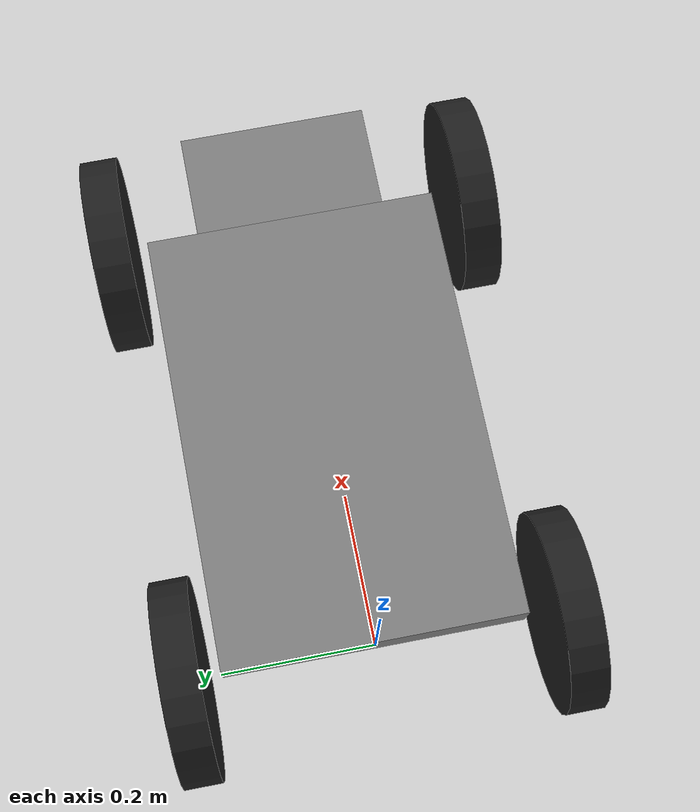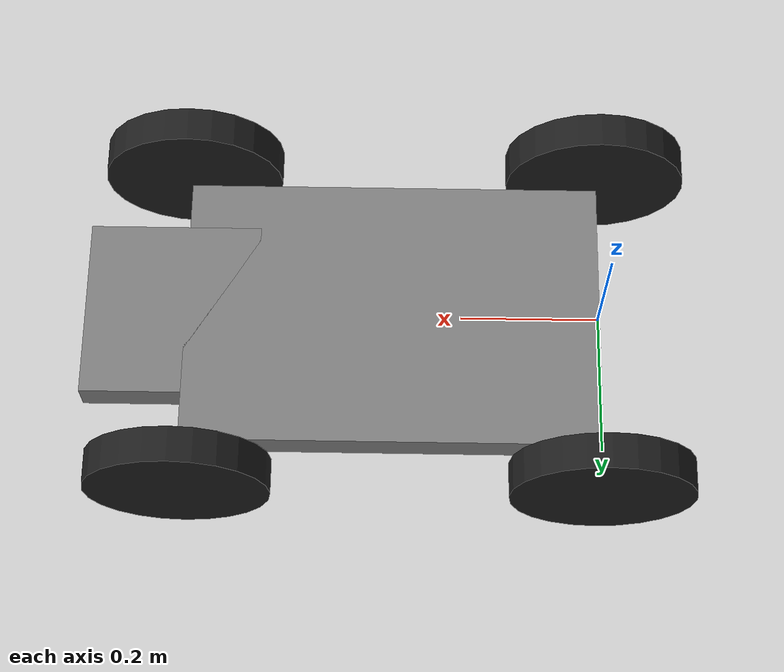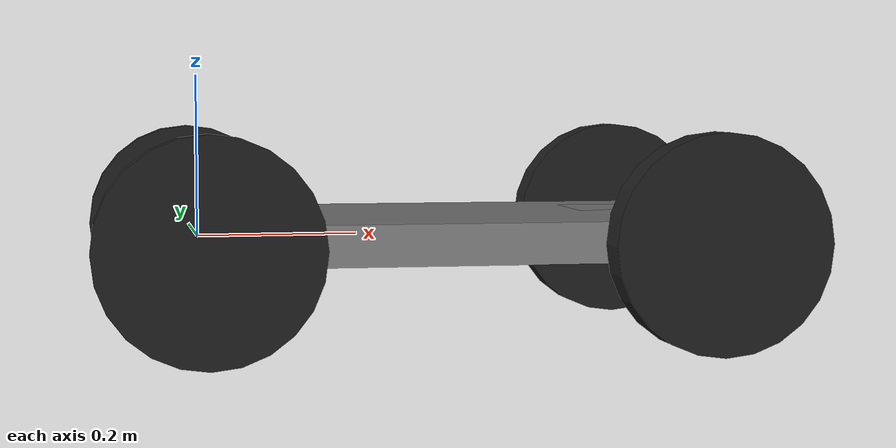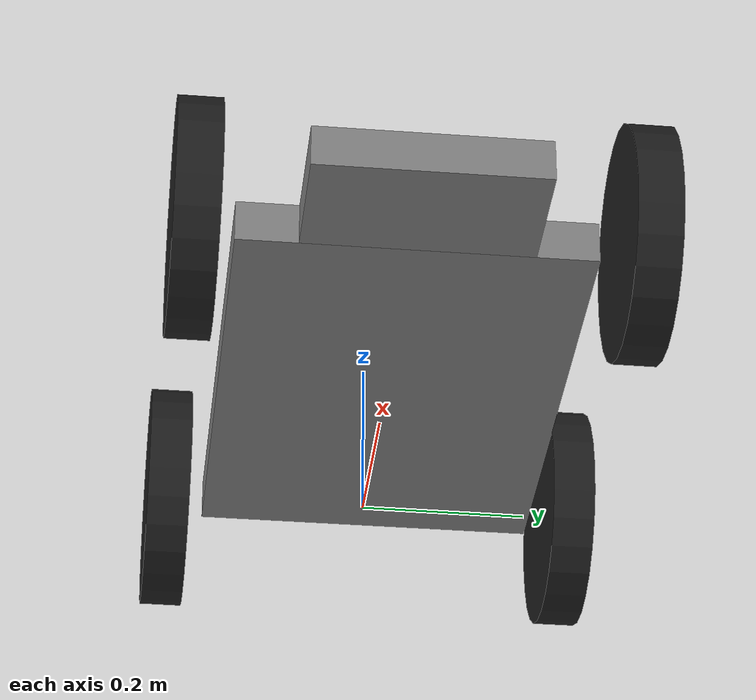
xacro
<?xml version="1.0"?>
<robot xmlns:xacro="http://www.ros.org/wiki/xacro" name="whill_modelc" >

    <link name="base_link">

    </link>

    <link name="base_floor">
        <visual>
            <geometry>
                <box size="0.600 0.400 0.050"/>
            </geometry>
            <material name="grey">
                <color rgba="0.5 0.5 0.5 1.0"/>
            </material>
        </visual>

        <collision>
            <geometry>
                <box size="0.600 0.400 0.050"/>
            </geometry>
        </collision>

        <inertial>
            <origin xyz="0 0 0" rpy="0 0 0" />
            <mass value="40" />
            <inertia ixx="1.0"  ixy="0.0"   ixz="0.0"
                                iyy="1.0"   iyz="0.0"
                                            izz="1.0" />
        </inertial>
    </link>

    <joint name="base_body_joint" type="fixed">
        <parent link="base_link" />
        <child link="base_floor" />
        <origin xyz="0.3 0 0.0" rpy="0 0 0"/>
    </joint>

    <link name="footrest_link">
        <collision>
            <geometry>
                <box size="0.250 0.260 0.050"/>
            </geometry>
        </collision>
        <visual>
            <geometry>
                <box size="0.250 0.260 0.050"/>
            </geometry>
            <material name="grey">
                <color rgba="0.5 0.5 0.5 1.0"/>
            </material>
        </visual>
        <inertial>
            <origin xyz="0 0 0" rpy="0 0 0" />
            <mass value="1" />
            <inertia ixx="1.0"  ixy="0.0"   ixz="0.0"
                                iyy="1.0"   iyz="0.0"
                                            izz="1.0" />
        </inertial>
    </link>

    <joint name="footrest_joint" type="fixed">
        <parent link="base_floor" />
        <child link="footrest_link" />
        <origin xyz="0.320 0 0" rpy="0 0 0"/>
    </joint>

    <link name="left_wheel_link">
        <visual>
            <geometry>
                <cylinder length="0.05" radius="0.1325"/>
            </geometry>
            <origin xyz="0 0 0" rpy="0 0 0" />
            <material name="black" />
        </visual>

        <collision>
            <geometry>
                <cylinder length="0.05" radius="0.1325"/>
            </geometry>
        </collision>

        <inertial>
            <origin xyz="0 0 0"/>
            <mass value="0.500"/>
            <inertia ixx="0.0013541667" ixy="0" ixz="0" iyy="0.0013541667" iyz="0" izz="0.0025"/>
        </inertial>
    </link>

    <joint name="leftWheel" type="continuous">
        <parent link="base_floor" />
        <child link="left_wheel_link" />
        <origin xyz="-0.3 0.245 0" rpy="-1.57 0 0" />
        <axis xyz="0 0 1" />
    </joint>

    <link name="right_wheel_link">
        <collision>
            <origin xyz="0 0 0" rpy="0 0 0" />
            <geometry>
                <cylinder length="0.05" radius="0.1325"/>
            </geometry>
        </collision>
        <visual>
            <origin xyz="0 0 0" rpy="0 0 0" />
            <geometry>
                <cylinder length="0.05" radius="0.1325"/>
            </geometry>
            <material name="black" />
        </visual>
        <inertial>
            <origin xyz="0 0 0"/>
            <mass value="0.500"/>
            <inertia ixx="0.0013541667" ixy="0" ixz="0" iyy="0.0013541667" iyz="0" izz="0.0025"/>
        </inertial>
    </link>

    <joint name="rightWheel" type="continuous">
        <parent link="base_floor" />
        <child link="right_wheel_link" />
        <origin xyz="-0.3 -0.245 0" rpy="1.57 0 0" />
        <axis xyz="0 0 1" />
    </joint>

    <link name="frontwheel_left">
        <collision>
            <geometry>
                <cylinder length="0.05" radius="0.1325"/>
            </geometry>
        </collision>

        <visual>
            <geometry>
                <cylinder length="0.05" radius="0.1325"/>
            </geometry>
            <material name="black" />
        </visual>

        <inertial>
            <origin xyz="0 0 0" rpy="0 0 0" />
            <mass value="1.0" />
            <inertia ixx="1.0"  ixy="0.0"   ixz="0.0"
                                iyy="1.0"   iyz="0.0"
                                            izz="1.0" />
        </inertial>
    </link>

    <joint name="frontwheel_left_joint" type="fixed">
        <parent link="base_floor" />
        <child link="frontwheel_left" />
        <origin xyz="0.3 -0.245 0" rpy="1.57 0 0" />
        <axis xyz="0 0 1" />
    </joint>

    <link name="frontwheel_right">
        <collision>
            <geometry>
                <cylinder length="0.05" radius="0.1325"/>
            </geometry>
        </collision>

        <visual>
            <geometry>
                <cylinder length="0.05" radius="0.1325"/>
            </geometry>
            <material name="black" />
        </visual>

        <inertial>
            <origin xyz="0 0 0" rpy="0 0 0" />
            <mass value="1.0" />
            <inertia ixx="1.0"  ixy="0.0"   ixz="0.0"
                                iyy="1.0"   iyz="0.0"
                                            izz="1.0" />
        </inertial>
    </link>

    <joint name="frontwheel_right_joint" type="fixed">
        <parent link="base_floor" />
        <child link="frontwheel_right"/>
        <origin xyz="0.3 0.245 0" rpy="1.57 0 0" />
        <axis xyz="0 0 -1" />
    </joint>

    <!-- IMU -->
    <link name="imu">
    </link>

    <joint name="imu_joint" type="fixed">
        <axis xyz="0 1 0" />
        <origin xyz="0.02 0 0.05" rpy="0 0.85521133347 3.14159265359"/>
        <parent link="base_link"/>
        <child link="imu"/>
    </joint>

    <link name="laser"/>

	<joint name="lidar_link_joint" type="fixed">
		<origin xyz="0.7 0 0.1"/>
		<parent link="base_link"/>
		<child link="laser"/>
	</joint>

    <link name="velodyne"/>

	<joint name="velodyne_link_joint" type="fixed">
		<origin xyz="0.55 0.25 1"/>
		<parent link="base_link"/>
		<child link="velodyne"/>
	</joint>

    <link name="point"/>

	<joint name="point_link_joint" type="fixed">
		<origin xyz="-0.5 0 0.1"/>
		<parent link="base_link"/>
		<child link="point"/>
	</joint>

    <link name="front"/>

	<joint name="front_link_joint" type="fixed">
		<origin xyz="0.5 0 0.1"/>
		<parent link="base_link"/>
		<child link="front"/>
	</joint>

    <link name="side"/>

	<joint name="side_link_joint" type="fixed">
		<origin xyz="0.2 0.9 0.1"/>
		<parent link="base_link"/>
		<child link="side"/>
	</joint>

    <!-- ===============  Transmission =============== -->

    <transmission name="right_wheel_trans">
        <type>transmission_interface/SimpleTransmission</type>
        <joint name="rightWheel">
            <hardwareInterface>hardware_interface/VelocityJointInterface</hardwareInterface>
        </joint>
        <actuator name="right_wheel_motor">
            <hardwareInterface>hardware_interface/VelocityJointInterface</hardwareInterface>
            <mechanicalReduction>30</mechanicalReduction>
        </actuator>
    </transmission>

    <transmission name="left_wheel_trans">
        <type>transmission_interface/SimpleTransmission</type>
        <joint name="leftWheel">
            <hardwareInterface>hardware_interface/VelocityJointInterface</hardwareInterface>
        </joint>
        <actuator name="left_wheel_motor">
            <hardwareInterface>hardware_interface/VelocityJointInterface</hardwareInterface>
            <mechanicalReduction>30</mechanicalReduction>
        </actuator>
    </transmission>

    <!-- For Gazebo -->

    <gazebo>
        <plugin name="gazebo_ros_control" filename="libgazebo_ros_control.so">
            <robotNamespace>/whill_simulator</robotNamespace>
        </plugin>
    </gazebo>

    <gazebo reference="base_floor">
        <selfCollide>true</selfCollide>
        <mu1 value="0.05" />
        <mu2 value="0.05" />
    </gazebo>

    <gazebo reference="sensor_arm_link">
        <selfCollide>true</selfCollide>
        <mu1 value="0.05" />
        <mu2 value="0.05" />
    </gazebo>

    <gazebo reference="rearwheel_right">
        <selfCollide>true</selfCollide>
        <mu1 value="1.0" />
        <mu2 value="1.0" />
    </gazebo>

    <gazebo reference="rearwheel_left">
        <selfCollide>true</selfCollide>
        <mu1 value="1.0" />
        <mu2 value="1.0" />
    </gazebo>

    <gazebo reference="frontwheel_right">
        <selfCollide>true</selfCollide>
        <mu1 value="0.0" />
        <mu2 value="0.0" />
    </gazebo>

    <gazebo reference="frontwheel_left">
        <selfCollide>true</selfCollide>
        <mu1 value="0.0" />
        <mu2 value="0.0" />
    </gazebo>
 d

</robot>
